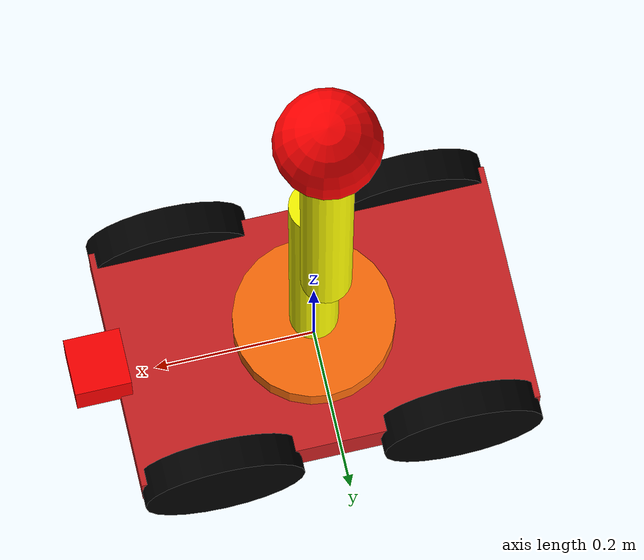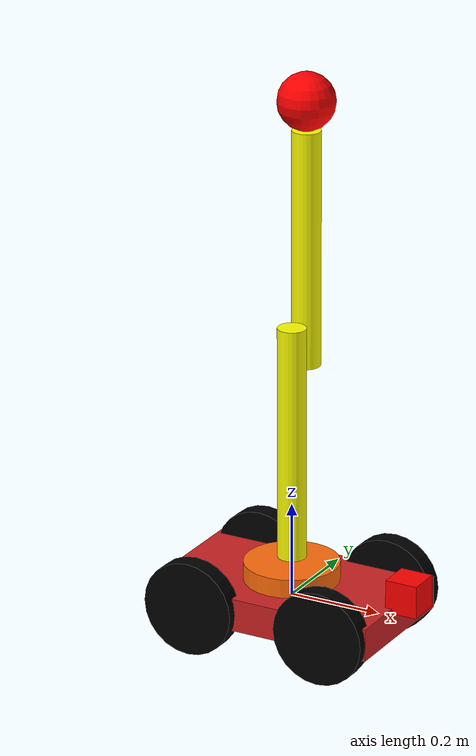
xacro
<?xml version="1.0"?>
<robot xmlns:xacro="http://www.ros.org/wiki/xacro" name="robot_alpha">

<xacro:include filename="$(find surveillance_robot2)/urdf/robot_alpha.gazebo"/>
<xacro:include filename="$(find surveillance_robot2)/urdf/materials.xacro" />

 <!-- INERTIAL MACROS -->

 <xacro:macro name="cylinder_inertia" params="mass r l">
    <inertia ixx="${mass*(3*r*r+l*l)/12}" ixy = "0" ixz = "0"
                iyy="${mass*(3*r*r+l*l)/12}" iyz = "0" izz="${mass*(r*r)/2}" />
 </xacro:macro>

 <xacro:macro name="box_inertia" params="mass h d w">
    <inertia ixx="${mass*(h*h+d*d)/12}" ixy = "0" ixz = "0"
                iyy="${mass*(h*h+w*w)/12}" iyz = "0" izz="${mass*(d*d+w*w)/12}" />
 </xacro:macro>

 <xacro:macro name="sphere_inertia" params="mass r">
    <inertia ixx="${2*mass*r*r/5}" ixy = "0" ixz = "0"
            iyy="${2*mass*r*r/5}" iyz = "0" izz="${2*mass*r*r/5}" />
 </xacro:macro>

<!-- CHASSIS -->

  <link name="link_chassis">
    <pose>0 0 0.1 0 0 0</pose>
    <inertial>
      <mass value="10"/>
      <origin rpy="0 0 0" xyz="0 0 0"/>
      <xacro:box_inertia mass="10" h="0.07" d="0.3" w="0.5"/>
    </inertial>
    <collision name="collision_chassis">
      <geometry>
        <box size="0.5 0.3 0.07"/>
      </geometry>
      <origin rpy="0 0 0" xyz="0 0 0"/>
    </collision>
    <visual>
      <origin rpy="0 0 0" xyz="0 0 0"/>
      <geometry>
        <box size="0.5 0.3 0.07"/>
      </geometry>
      <material name="red"/>
    </visual>
  </link>

<!-- WHEELS -->

 <xacro:macro name="link_wheel" params="name">
  <link name="${name}">
    <inertial>
      <mass value="0.2"/>
      <origin rpy="0 1.5707 1.5707" xyz="0 0 0"/>
      <xacro:cylinder_inertia mass="0.2" r="0.1" l="0.04" />
    </inertial>
    <collision name="${name}_collision">
      <origin rpy="0 1.5707 1.5707" xyz="0 0 0"/>
      <geometry>
        <cylinder length="0.04" radius="0.1"/>
      </geometry>
    </collision>
    <visual name="${name}_visual">
      <origin rpy="0 1.5707 1.5707" xyz="0 0 0"/>
      <geometry>
        <cylinder length="0.04" radius="0.1"/>
      </geometry>
      <material name="black"/>
     </visual>
    </link>
  </xacro:macro>

<xacro:macro name="joint_wheel" params="name child origin_xyz">
  <joint name="${name}" type="continuous">
  <origin rpy="0 0 0" xyz="${origin_xyz}"/>
  <child link="${child}"/>
  <parent link="link_chassis"/>
  <axis rpy="0 0 0" xyz="0 1 0"/>
  <limit effort="10000" velocity="1000"/>
  <joint_properties damping="1.0" friction="1.0"/>
  </joint>
</xacro:macro>

  <xacro:link_wheel name="link_front_right_wheel" />
  <xacro:link_wheel name="link_front_left_wheel" />
  <xacro:link_wheel name="link_back_right_wheel" />
  <xacro:link_wheel name="link_back_left_wheel" />

  <xacro:joint_wheel name="joint_front_right_wheel"  child="link_front_right_wheel"  origin_xyz="0.15 0.15 0"/>
  <xacro:joint_wheel name="joint_front_left_wheel"  child="link_front_left_wheel"  origin_xyz="0.15 -0.15 0"/>
  <xacro:joint_wheel name="joint_back_right_wheel"  child="link_back_right_wheel"  origin_xyz="-0.15 0.15 0"  />
  <xacro:joint_wheel name="joint_back_left_wheel"  child="link_back_left_wheel"  origin_xyz="-0.15 -0.15 0"  />

  <!-- LASERSCAN -->

   <link name="hokuyo_link">
      <collision>
        <origin xyz="0 0 0.035" rpy="0 0 0"/>
        <geometry>
    <box size="0.07 0.07 0.07"/>
        </geometry>
      </collision>
      <visual>
        <origin xyz="0 0 0.035" rpy="0 0 0"/>
        <geometry>
        <box size="0.07 0.07 0.07"/>
        </geometry>
        <material name="grey">
        <color rgba="1 0 0 1"/>
        </material>
      </visual>
      <inertial>
        <mass value="1e-5" />
        <origin xyz="0 0 0.035" rpy="0 0 0"/>
        <inertia ixx="1e-6" ixy="0" ixz="0" iyy="1e-6" iyz="0" izz="1e-6" />
      </inertial>
   </link>

   <joint name="hokuyo_joint" type="fixed">
      <axis xyz="0 1 0" />
      <origin xyz="0.27 0 0.025" rpy="0 0 0"/>
      <parent link="link_chassis"/>
      <child link="hokuyo_link"/>
   </joint>

<!-- ARM -->

  <link name="link_arm_base">
    <inertial>
      <mass value="0.1"/>
      <origin rpy="0 0 0" xyz="0 0 0.015"/>
      <xacro:cylinder_inertia mass="0.1" l="0.05" r="0.1"/>
    </inertial>
    <collision name="link_arm_base_collision">
      <geometry>
        <cylinder length="0.05" radius= "0.1"/>
      </geometry>
      <origin rpy="0 0 0" xyz="0 0 0.015"/>
    </collision>
    <visual>
      <origin rpy="0 0 0" xyz="0 0 0.015"/>
      <geometry>
        <cylinder length="0.05" radius= "0.1"/>
      </geometry>
      <material name="orange"/>
    </visual>
  </link>

  <joint name="joint_arm_base" type="continuous">
    <parent link="link_chassis"/>
    <child link="link_arm_base"/>
    <axis xyz="0 0 1"/>
    <origin xyz="0 0 0.035"/>
  </joint>

  <link name="link_arm1">
    <inertial>
      <mass value="0.002"/>
      <origin rpy="0 0 0" xyz="0 0 0.25"/>
      <xacro:cylinder_inertia mass="0.002" l="0.5" r="0.03"/>
    </inertial>
  <collision name="link_arm1_collision">
      <geometry>
        <cylinder length="0.5" radius= "0.03"/>
      </geometry>
      <origin rpy="0 0 0" xyz="0 0 0.25"/>
    </collision>
    <visual>
      <origin rpy="0 0 0" xyz="0 0 0.25"/>
      <geometry>
        <cylinder length="0.5" radius= "0.03"/>
      </geometry>
      <material name="yellow"/>
    </visual>
  </link>

  <joint name="joint_arm1" type="revolute">
    <parent link="link_arm_base"/>
    <child link="link_arm1"/>
    <axis xyz="0 1 0"/>
    <origin xyz="0 0 0.05"/>
    <limit effort ="100.0" lower="-1.0" upper="1.0" velocity="0.5"/>
  </joint>

  <link name="link_arm2">
    <inertial>
      <mass value="0.002"/>
      <origin rpy="0 0 0" xyz="0 0.06 0.25"/>
      <xacro:cylinder_inertia mass="0.002" l="0.45" r="0.03"/>
    </inertial>
    <collision name="link_arm2_collision">
      <geometry>
        <cylinder length="0.5" radius= "0.03"/>
      </geometry>
      <origin rpy="0 0 0" xyz="0 0.06 0.25"/>
    </collision>
    <visual>
      <origin rpy="0 0 0" xyz="0 0.06 0.25"/>
      <geometry>
        <cylinder length="0.5" radius= "0.03"/>
      </geometry>
      <material name="yellow"/>
    </visual>
  </link>

  <joint name="joint_arm2" type="revolute">
    <parent link="link_arm1"/>
    <child link="link_arm2"/>
    <axis xyz="0 1 0"/>
    <origin xyz="0 0 0.4"/>
    <limit effort ="100.0" lower="-2" upper="2" velocity="0.5"/>
  </joint>

  <!-- CAMERA -->

   <link name="camera_link">
      <collision>
        <origin rpy="0 0 0" xyz="0 0.06 0"/>
        <geometry>
          <sphere radius="0.06"/>
        </geometry>
      </collision>
      <visual>
        <origin rpy="0 0.0 0" xyz="0 0.06 0"/>
        <geometry>
          <sphere radius="0.06"/>
        </geometry>
        <material name="grey">
        <color rgba="1 0 0 1"/>
        </material>
      </visual>
      <inertial>
        <mass value="1e-5" />
        <origin rpy="0 0 0" xyz="0 0.06 0"/>
        <inertia ixx="1e-6" ixy="0" ixz="0" iyy="1e-6" iyz="0" izz="1e-6" />
      </inertial>
   </link>

   <joint name="camera_joint" type="fixed">
      <axis xyz="0 1 0" />
      <origin xyz="0 0 0.56" rpy="0 0 0"/>
      <parent link="link_arm2"/>
      <child link="camera_link"/>
   </joint>

  <!-- TRASMISSION -->

  <transmission name="joint_arm_base_trans">
    <type>transmission_interface/SimpleTransmission</type>
    <joint name="joint_arm_base">
      <hardwareInterface>hardware_interface/EffortJointInterface</hardwareInterface>
    </joint>
    <actuator name="motor1">
      <hardwareInterface>hardware_interface/EffortJointInterface</hardwareInterface>
      <mechanicalInterface>1</mechanicalInterface>
    </actuator>
  </transmission>

  <transmission name="joint_arm1_trans">
    <type>transmission_interface/SimpleTransmission</type>
    <joint name="joint_arm1">
      <hardwareInterface>hardware_interface/EffortJointInterface</hardwareInterface>
    </joint>
    <actuator name="motor2">
      <hardwareInterface>hardware_interface/EffortJointInterface</hardwareInterface>
      <mechanicalInterface>1</mechanicalInterface>
    </actuator>
  </transmission>

  <transmission name="joint_arm2">
    <type>transmission_interface/SimpleTransmission</type>
    <joint name="joint_arm2">
      <hardwareInterface>hardware_interface/EffortJointInterface</hardwareInterface>
    </joint>
    <actuator name="motor3">
      <hardwareInterface>hardware_interface/EffortJointInterface</hardwareInterface>
      <mechanicalInterface>1</mechanicalInterface>
    </actuator>
  </transmission>

</robot>

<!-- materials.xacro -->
<robot name="robot_alpha" xmlns:xacro="https://www.ros.org/wiki/xacro" >

  <material name="black">
    <color rgba="0.0 0.0 0.0 1.0"/>
  </material>
  <material name="blue">
    <color rgba="0.203125 0.23828125 0.28515625 1.0"/>
  </material>
  <material name="green">
    <color rgba="0.0 0.8 0.0 1.0"/>
  </material>
  <material name="grey">
    <color rgba="0.2 0.2 0.2 1.0"/>
  </material>
  <material name="orange">
    <color rgba="1.0 0.423529411765 0.0392156862745 1.0"/>
  </material>
  <material name="brown">
    <color rgba="0.870588235294 0.811764705882 0.764705882353 1.0"/>
  </material>
  <material name="red">
    <color rgba="0.80078125 0.12890625 0.1328125 1.0"/>
  </material>
  <material name="white">
    <color rgba="1.0 1.0 1.0 1.0"/>
  </material>
    <material name="yellow">
    <color rgba="1.0 1.0 0 1.0"/>
  </material>

</robot>
